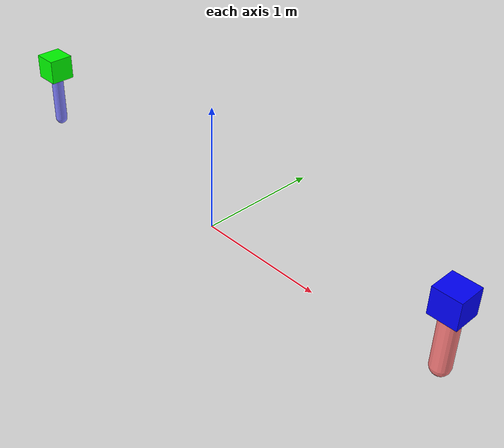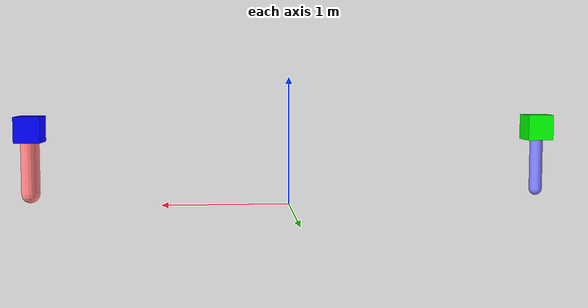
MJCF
<mujoco>
  <option gravity="0 0 -9.81"/>
  <worldbody>
    <body name="spring_1" pos="-2 0 0.1">
      <geom type="capsule" fromto="0 0 0 0 0 0.4" size="0.05" rgba="0.5 0.5 1 1"/>
    </body>
    <body name="block_1" pos="-2 0 0.6">
      <geom type="box" size="0.1 0.1 0.1" density="1" rgba="0 1 0 1"/>
      <joint type="slide" axis="0 0 1"/>
    </body>
    <body name="spring_2" pos="2 0 0.1">
      <geom type="capsule" fromto="0 0 0 0 0 0.4" size="0.07" rgba="1 0.5 0.5 1"/>
    </body>
    <body name="block_2" pos="2 0 0.6">
      <geom type="box" size="0.1 0.1 0.1" density="1" rgba="0 0 1 1"/>
      <joint type="slide" axis="0 0 1"/>
    </body>
  </worldbody>
</mujoco>
